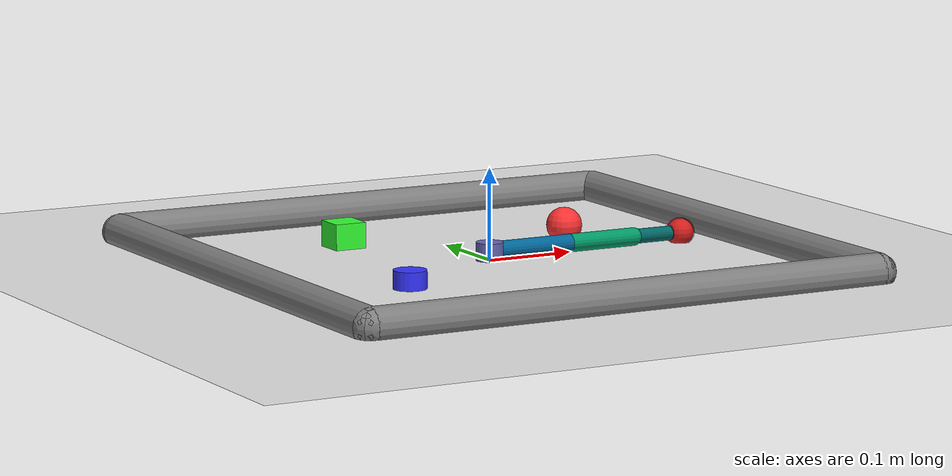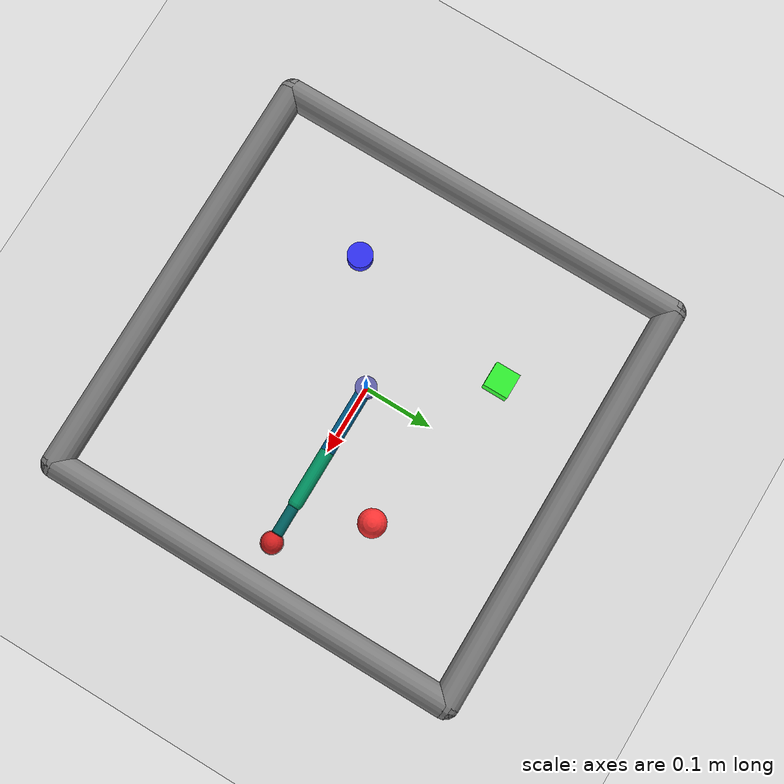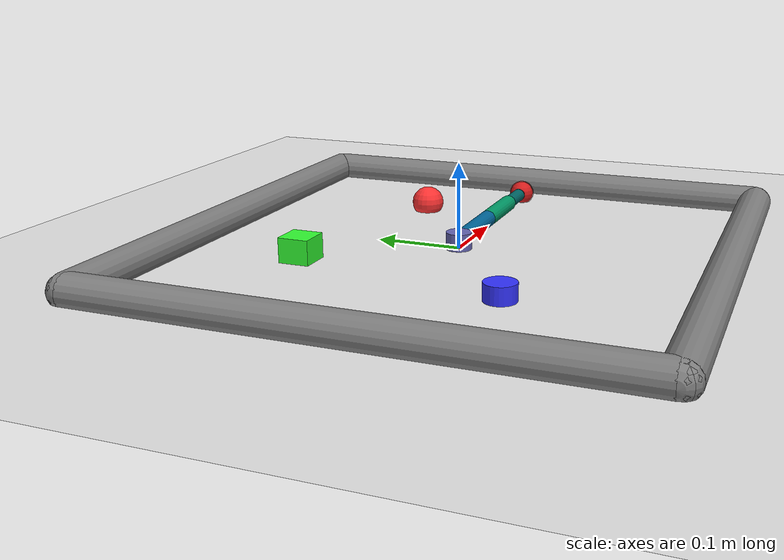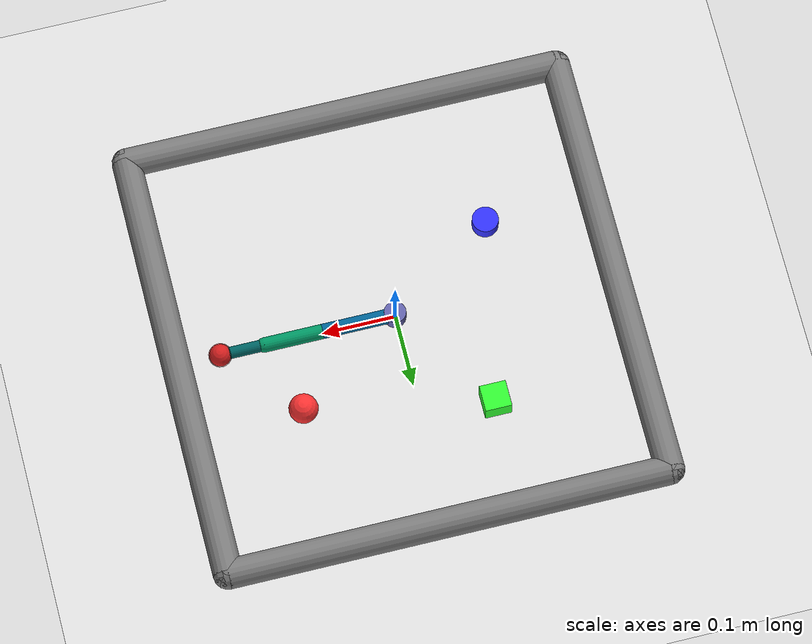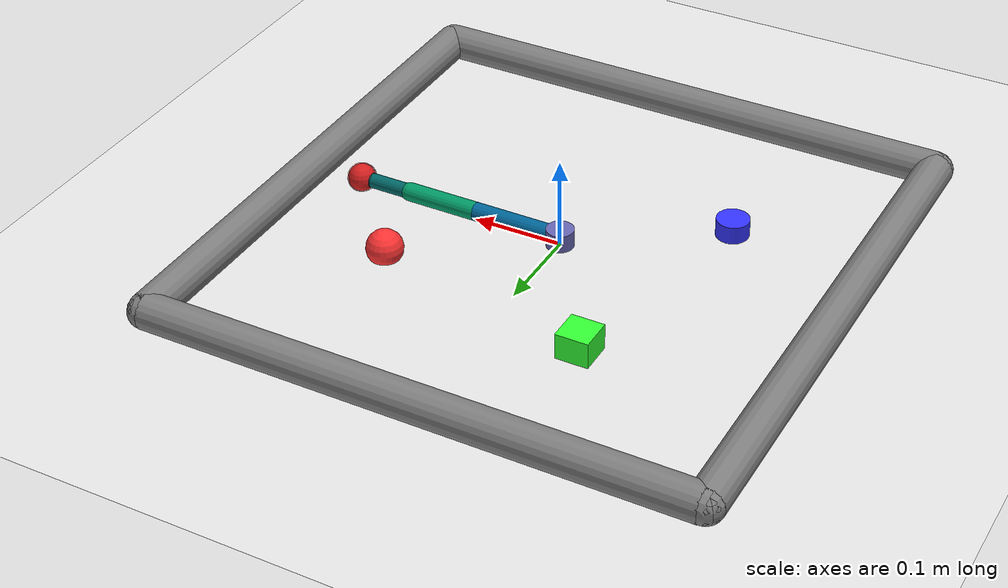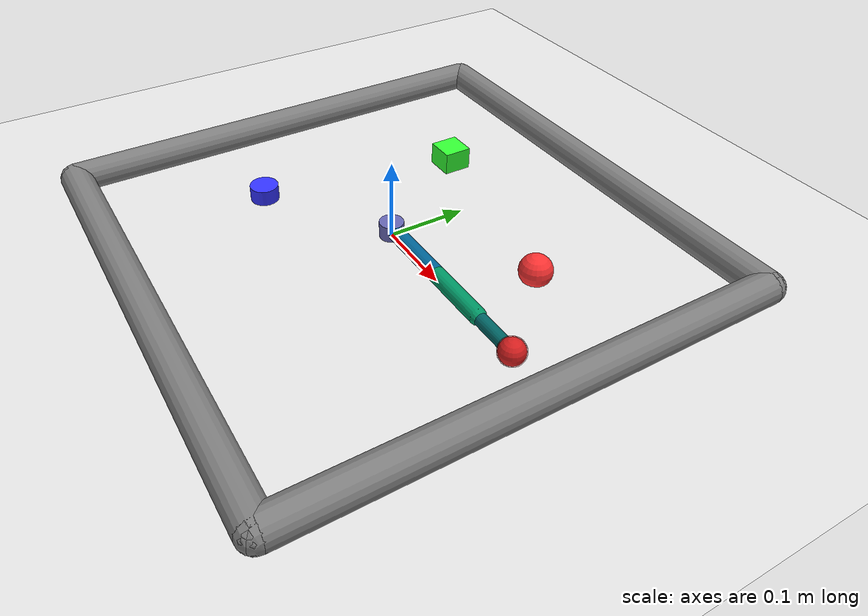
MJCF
<mujoco model="tabletop_reach">
  <compiler angle="radian" inertiafromgeom="true"/>
  <default>
    <joint armature="1" damping="1" limited="true"/>
    <geom contype="0" friction="1 0.1 0.1"/>
  </default>
  <option gravity="0 0 -9.81" integrator="RK4" timestep="0.01"/>

  <worldbody>
    <!-- Ground -->
    <geom conaffinity="0" contype="0" name="ground" pos="0 0 0" rgba="0.9 0.9 0.9 1" size="1 1 10" type="plane"/>

    <!-- Arena walls -->
    <geom conaffinity="0" contype="0" fromto="-.3 -.3 .01 .3 -.3 .01" name="sideS" rgba="0.5 0.5 0.5 1" size=".02" type="capsule"/>
    <geom conaffinity="0" contype="0" fromto=" .3 -.3 .01 .3  .3 .01" name="sideE" rgba="0.5 0.5 0.5 1" size=".02" type="capsule"/>
    <geom conaffinity="0" contype="0" fromto="-.3  .3 .01 .3  .3 .01" name="sideN" rgba="0.5 0.5 0.5 1" size=".02" type="capsule"/>
    <geom conaffinity="0" contype="0" fromto="-.3 -.3 .01 -.3 .3 .01" name="sideW" rgba="0.5 0.5 0.5 1" size=".02" type="capsule"/>

    <!-- Arm pivot -->
    <geom conaffinity="0" contype="0" fromto="0 0 0 0 0 0.02" name="root" rgba="0.4 0.4 0.7 1" size=".015" type="cylinder"/>

    <!-- 3-joint arm -->
    <body name="body0" pos="0 0 .01">
      <joint axis="0 0 1" limited="false" name="joint0" pos="0 0 0" type="hinge"/>
      <geom fromto="0 0 0 0.1 0 0" name="link0" rgba="0.0 0.4 0.6 1" size=".01" type="capsule"/>

      <body name="body1" pos="0.1 0 0">
        <joint axis="0 0 1" limited="true" name="joint1" pos="0 0 0" range="-3.0 3.0" type="hinge"/>
        <geom fromto="0 0 0 0.08 0 0" name="link1" rgba="0.0 0.6 0.4 1" size=".01" type="capsule"/>

        <body name="body2" pos="0.08 0 0">
          <joint axis="0 0 1" limited="true" name="joint2" pos="0 0 0" range="-3.0 3.0" type="hinge"/>
          <geom fromto="0 0 0 0.06 0 0" name="link2" rgba="0.0 0.4 0.4 1" size=".008" type="capsule"/>

          <body name="fingertip_body" pos="0.06 0 0">
            <!-- Fingertip with contact enabled for touch sensing -->
            <geom contype="1" conaffinity="1" name="fingertip_geom" pos="0 0 0" rgba="0.8 0.2 0.2 1" size=".015" type="sphere"/>
            <site name="fingertip" pos="0 0 0" size="0.016" rgba="1 0 0 0.3"/>
          </body>
        </body>
      </body>
    </body>

    <!-- Object 0: red sphere -->
    <body name="object_0" pos="0.15 0.1 0.01">
      <joint armature="0" axis="1 0 0" damping="0" limited="true" name="obj0_x" range="-.27 .27" ref="0.15" stiffness="0" type="slide"/>
      <joint armature="0" axis="0 1 0" damping="0" limited="true" name="obj0_y" range="-.27 .27" ref="0.1" stiffness="0" type="slide"/>
      <geom contype="1" conaffinity="1" name="obj0_geom" pos="0 0 0" rgba="1 0.2 0.2 1" size=".02" type="sphere"/>
    </body>

    <!-- Object 1: green box -->
    <body name="object_1" pos="-0.1 0.15 0.01">
      <joint armature="0" axis="1 0 0" damping="0" limited="true" name="obj1_x" range="-.27 .27" ref="-0.1" stiffness="0" type="slide"/>
      <joint armature="0" axis="0 1 0" damping="0" limited="true" name="obj1_y" range="-.27 .27" ref="0.15" stiffness="0" type="slide"/>
      <geom contype="1" conaffinity="1" name="obj1_geom" pos="0 0 0" rgba="0.2 1 0.2 1" size=".018 .018 .018" type="box"/>
    </body>

    <!-- Object 2: blue cylinder -->
    <body name="object_2" pos="-0.15 -0.1 0.01">
      <joint armature="0" axis="1 0 0" damping="0" limited="true" name="obj2_x" range="-.27 .27" ref="-0.15" stiffness="0" type="slide"/>
      <joint armature="0" axis="0 1 0" damping="0" limited="true" name="obj2_y" range="-.27 .27" ref="-0.1" stiffness="0" type="slide"/>
      <geom contype="1" conaffinity="1" name="obj2_geom" pos="0 0 0" rgba="0.2 0.2 1 1" size=".018 .01" type="cylinder"/>
    </body>

    <!-- Overhead camera for vision observations -->
    <camera name="overhead" pos="0 0 0.8" xyaxes="1 0 0 0 1 0" fovy="45"/>
  </worldbody>

  <actuator>
    <motor ctrllimited="true" ctrlrange="-1.0 1.0" gear="200.0" joint="joint0"/>
    <motor ctrllimited="true" ctrlrange="-1.0 1.0" gear="200.0" joint="joint1"/>
    <motor ctrllimited="true" ctrlrange="-1.0 1.0" gear="150.0" joint="joint2"/>
  </actuator>

  <sensor>
    <touch name="fingertip_touch" site="fingertip"/>
    <jointpos name="joint0_pos" joint="joint0"/>
    <jointpos name="joint1_pos" joint="joint1"/>
    <jointpos name="joint2_pos" joint="joint2"/>
    <jointvel name="joint0_vel" joint="joint0"/>
    <jointvel name="joint1_vel" joint="joint1"/>
    <jointvel name="joint2_vel" joint="joint2"/>
  </sensor>
</mujoco>
